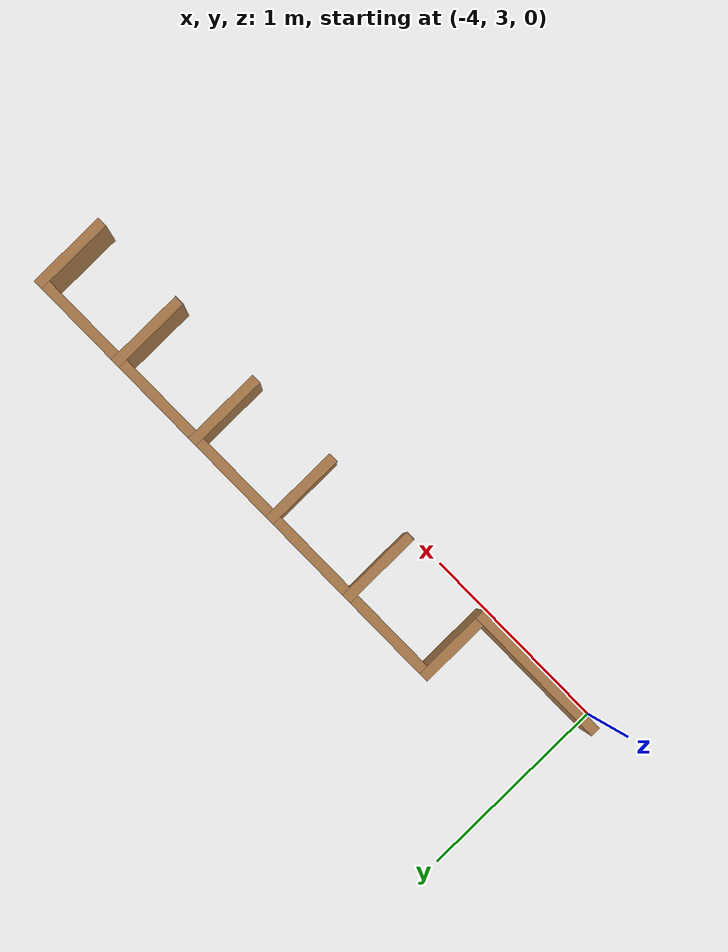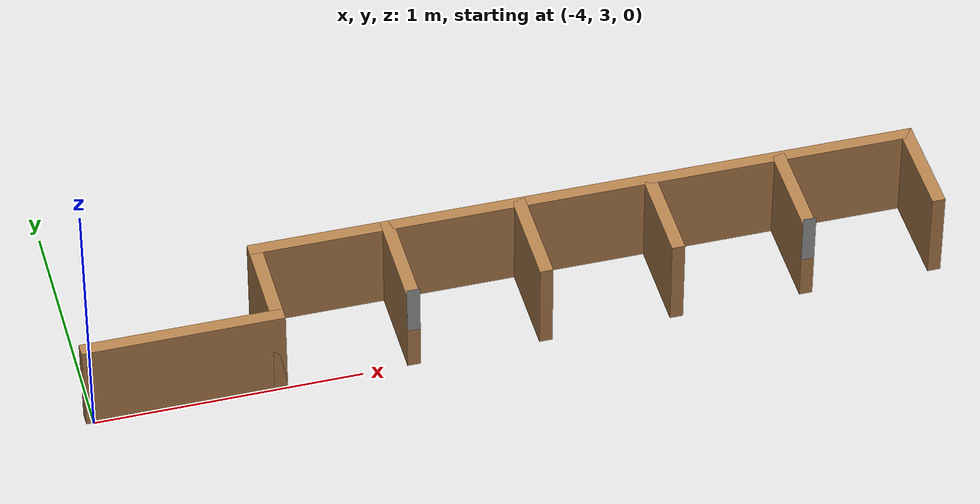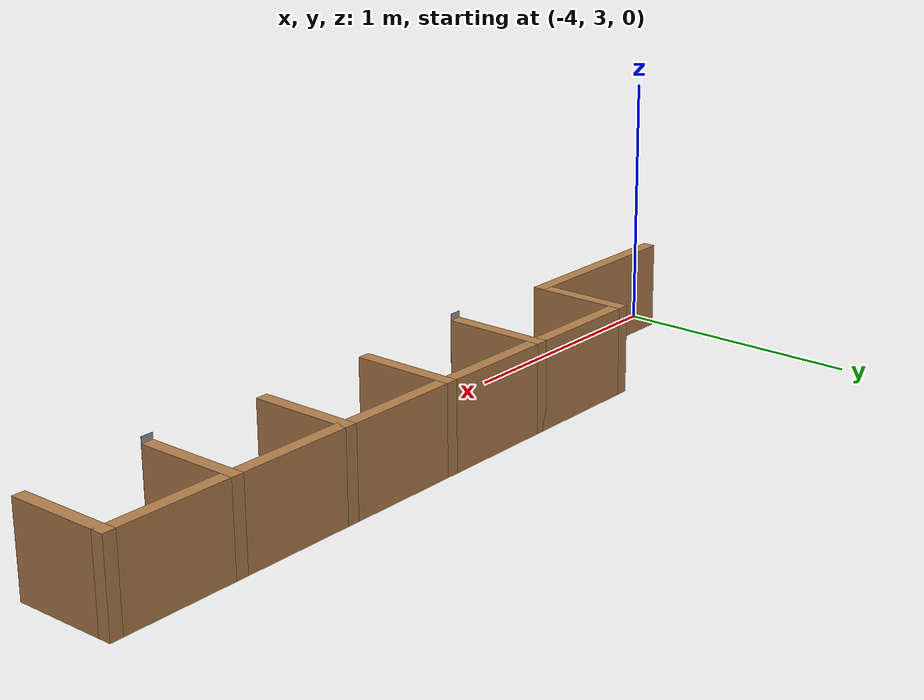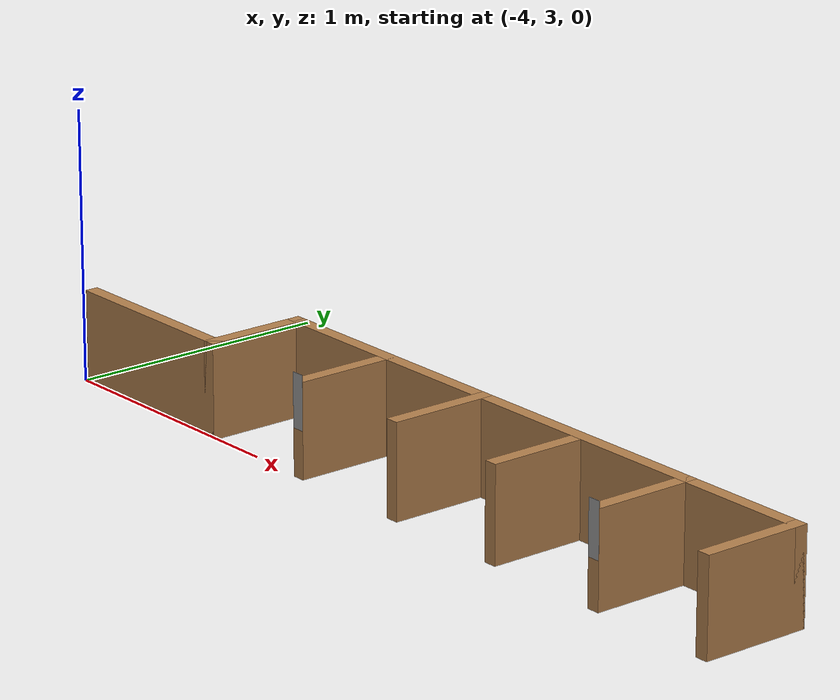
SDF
<sdf version="1.4">
 <world name="default">
  <model name="ground_plane">
   <static>true</static>
   <link name="plane_link">
    <collision name="collision">
     <geometry><plane><normal>0 0 1</normal><size>10 10</size></plane></geometry>
     <surface><friction><ode><mu>100</mu><mu2>50</mu2></ode></friction></surface>
    </collision>
   </link>
  </model>
  <model name="wall_model1">
   <pose>-3.65 3.05 0.15 0 0 0</pose>
   <link name="wall_body">
    <collision name="wall_geom">
     <geometry><box><size>0.75 0.05 0.35</size></box></geometry>
     <surface>
      <friction>
       <ode><mu>-1</mu><mu2>-1</mu2><fdir1>0.0 0.0 0.0</fdir1><slip1>0</slip1><slip2>0</slip2></ode>
      </friction>
      <bounce><restitution_coefficient>0</restitution_coefficient><threshold>100000</threshold></bounce>
      <contact>
       <ode>
        <soft_cfm>0</soft_cfm>
        <soft_erp>0.2</soft_erp>
        <kp>1000000000000</kp>
        <kd>1</kd>
        <max_vel>100</max_vel>
        <min_depth>0.001</min_depth>
       </ode>
      </contact>
     </surface>
    </collision>
    <visual name="wall_geom_visual">
     <geometry><box><size>0.75 0.05 0.35</size></box></geometry>
     <material>
      <script><uri>file://media/materials/scripts/gazebo.material</uri><name>Gazebo/Wood</name></script>
     </material>
    </visual>
   </link>
   <static>1</static>
  </model>
  <model name="wall_model6">
   <pose>-3.3 3.23 0.15 0 0 1.5708</pose>
   <link name="wall_body">
    <collision name="wall_geom">
     <geometry><box><size>0.41 0.05 0.35</size></box></geometry>
     <surface>
      <friction>
       <ode><mu>-1</mu><mu2>-1</mu2><fdir1>0.0 0.0 0.0</fdir1><slip1>0</slip1><slip2>0</slip2></ode>
      </friction>
      <bounce><restitution_coefficient>0</restitution_coefficient><threshold>100000</threshold></bounce>
      <contact>
       <ode>
        <soft_cfm>0</soft_cfm>
        <soft_erp>0.2</soft_erp>
        <kp>1000000000000</kp>
        <kd>1</kd>
        <max_vel>100</max_vel>
        <min_depth>0.001</min_depth>
       </ode>
      </contact>
     </surface>
    </collision>
    <visual name="wall_geom_visual">
     <geometry><box><size>0.41 0.05 0.35</size></box></geometry>
     <material>
      <script><uri>file://media/materials/scripts/gazebo.material</uri><name>Gazebo/Wood</name></script>
     </material>
    </visual>
   </link>
   <static>1</static>
  </model>
  <model name="wall_model7">
   <pose>-2.8 3.23 0.15 0 0 1.5708</pose>
   <link name="wall_body">
    <collision name="wall_geom">
     <geometry><box><size>0.41 0.05 0.35</size></box></geometry>
     <surface>
      <friction>
       <ode><mu>-1</mu><mu2>-1</mu2><fdir1>0.0 0.0 0.0</fdir1><slip1>0</slip1><slip2>0</slip2></ode>
      </friction>
      <bounce><restitution_coefficient>0</restitution_coefficient><threshold>100000</threshold></bounce>
      <contact>
       <ode>
        <soft_cfm>0</soft_cfm>
        <soft_erp>0.2</soft_erp>
        <kp>1000000000000</kp>
        <kd>1</kd>
        <max_vel>100</max_vel>
        <min_depth>0.001</min_depth>
       </ode>
      </contact>
     </surface>
    </collision>
    <visual name="wall_geom_visual">
     <geometry><box><size>0.41 0.05 0.35</size></box></geometry>
     <material>
      <script><uri>file://media/materials/scripts/gazebo.material</uri><name>Gazebo/Wood</name></script>
     </material>
    </visual>
   </link>
   <static>1</static>
  </model>
  <model name="wall_model8">
   <pose>-2.3 3.23 0.15 0 0 1.5708</pose>
   <link name="wall_body">
    <collision name="wall_geom">
     <geometry><box><size>0.41 0.05 0.35</size></box></geometry>
     <surface>
      <friction>
       <ode><mu>-1</mu><mu2>-1</mu2><fdir1>0.0 0.0 0.0</fdir1><slip1>0</slip1><slip2>0</slip2></ode>
      </friction>
      <bounce><restitution_coefficient>0</restitution_coefficient><threshold>100000</threshold></bounce>
      <contact>
       <ode>
        <soft_cfm>0</soft_cfm>
        <soft_erp>0.2</soft_erp>
        <kp>1000000000000</kp>
        <kd>1</kd>
        <max_vel>100</max_vel>
        <min_depth>0.001</min_depth>
       </ode>
      </contact>
     </surface>
    </collision>
    <visual name="wall_geom_visual">
     <geometry><box><size>0.41 0.05 0.35</size></box></geometry>
     <material>
      <script><uri>file://media/materials/scripts/gazebo.material</uri><name>Gazebo/Wood</name></script>
     </material>
    </visual>
   </link>
   <static>1</static>
  </model>
  <model name="wall_model9">
   <pose>-1.8 3.23 0.15 0 0 1.5708</pose>
   <link name="wall_body">
    <collision name="wall_geom">
     <geometry><box><size>0.41 0.05 0.35</size></box></geometry>
     <surface>
      <friction>
       <ode><mu>-1</mu><mu2>-1</mu2><fdir1>0.0 0.0 0.0</fdir1><slip1>0</slip1><slip2>0</slip2></ode>
      </friction>
      <bounce><restitution_coefficient>0</restitution_coefficient><threshold>100000</threshold></bounce>
      <contact>
       <ode>
        <soft_cfm>0</soft_cfm>
        <soft_erp>0.2</soft_erp>
        <kp>1000000000000</kp>
        <kd>1</kd>
        <max_vel>100</max_vel>
        <min_depth>0.001</min_depth>
       </ode>
      </contact>
     </surface>
    </collision>
    <visual name="wall_geom_visual">
     <geometry><box><size>0.41 0.05 0.35</size></box></geometry>
     <material>
      <script><uri>file://media/materials/scripts/gazebo.material</uri><name>Gazebo/Wood</name></script>
     </material>
    </visual>
   </link>
   <static>1</static>
  </model>
  <model name="wall_model10">
   <pose>-1.3 3.23 0.15 0 0 1.5708</pose>
   <link name="wall_body">
    <collision name="wall_geom">
     <geometry><box><size>0.41 0.05 0.35</size></box></geometry>
     <surface>
      <friction>
       <ode><mu>-1</mu><mu2>-1</mu2><fdir1>0.0 0.0 0.0</fdir1><slip1>0</slip1><slip2>0</slip2></ode>
      </friction>
      <bounce><restitution_coefficient>0</restitution_coefficient><threshold>100000</threshold></bounce>
      <contact>
       <ode>
        <soft_cfm>0</soft_cfm>
        <soft_erp>0.2</soft_erp>
        <kp>1000000000000</kp>
        <kd>1</kd>
        <max_vel>100</max_vel>
        <min_depth>0.001</min_depth>
       </ode>
      </contact>
     </surface>
    </collision>
    <visual name="wall_geom_visual">
     <geometry><box><size>0.41 0.05 0.35</size></box></geometry>
     <material>
      <script><uri>file://media/materials/scripts/gazebo.material</uri><name>Gazebo/Wood</name></script>
     </material>
    </visual>
   </link>
   <static>1</static>
  </model>
  <model name="wall_model11">
   <pose>-0.8 3.23 0.15 0 0 1.5708</pose>
   <link name="wall_body">
    <collision name="wall_geom">
     <geometry><box><size>0.41 0.05 0.35</size></box></geometry>
     <surface>
      <friction>
       <ode><mu>-1</mu><mu2>-1</mu2><fdir1>0.0 0.0 0.0</fdir1><slip1>0</slip1><slip2>0</slip2></ode>
      </friction>
      <bounce><restitution_coefficient>0</restitution_coefficient><threshold>100000</threshold></bounce>
      <contact>
       <ode>
        <soft_cfm>0</soft_cfm>
        <soft_erp>0.2</soft_erp>
        <kp>1000000000000</kp>
        <kd>1</kd>
        <max_vel>100</max_vel>
        <min_depth>0.001</min_depth>
       </ode>
      </contact>
     </surface>
    </collision>
    <visual name="wall_geom_visual">
     <geometry><box><size>0.41 0.05 0.35</size></box></geometry>
     <material>
      <script><uri>file://media/materials/scripts/gazebo.material</uri><name>Gazebo/Wood</name></script>
     </material>
    </visual>
   </link>
   <static>1</static>
  </model>
  <model name="wall_model12">
   <pose>-2.05 3.41 0.15 0 0 0</pose>
   <link name="wall_body">
    <collision name="wall_geom">
     <geometry><box><size>2.55 0.05 0.35</size></box></geometry>
     <surface>
      <friction>
       <ode><mu>-1</mu><mu2>-1</mu2><fdir1>0.0 0.0 0.0</fdir1><slip1>0</slip1><slip2>0</slip2></ode>
      </friction>
      <bounce><restitution_coefficient>0</restitution_coefficient><threshold>100000</threshold></bounce>
      <contact>
       <ode>
        <soft_cfm>0</soft_cfm>
        <soft_erp>0.2</soft_erp>
        <kp>1000000000000</kp>
        <kd>1</kd>
        <max_vel>100</max_vel>
        <min_depth>0.001</min_depth>
       </ode>
      </contact>
     </surface>
    </collision>
    <visual name="wall_geom_visual">
     <geometry><box><size>2.55 0.05 0.35</size></box></geometry>
     <material>
      <script><uri>file://media/materials/scripts/gazebo.material</uri><name>Gazebo/Wood</name></script>
     </material>
    </visual>
   </link>
   <static>1</static>
  </model>
  <include>
   <uri>model://factory_gazebo/models/marker</uri>
   <name>marker6</name>
   <static>true</static>
   <pose>-1.3 3.025 0.25 0 0 1.570796</pose>
  </include>
  <include>
   <uri>model://factory_gazebo/models/marker</uri>
   <name>marker7</name>
   <static>true</static>
   <pose>-2.8 3.025 0.25 0 0 1.570796</pose>
  </include>
 </world>
</sdf>
